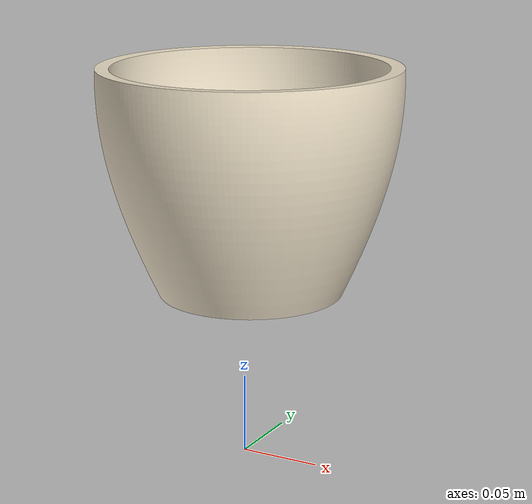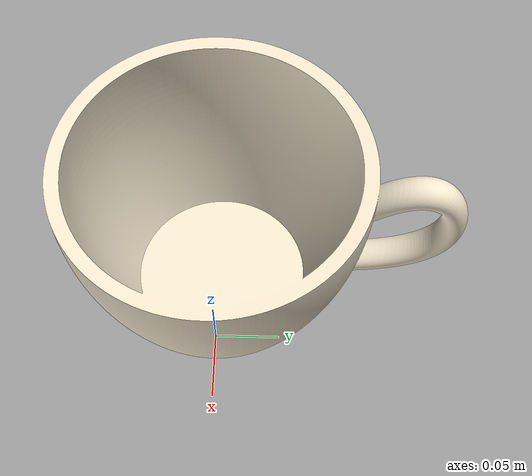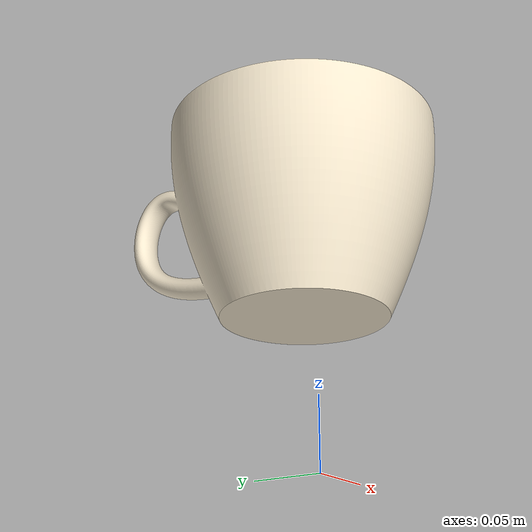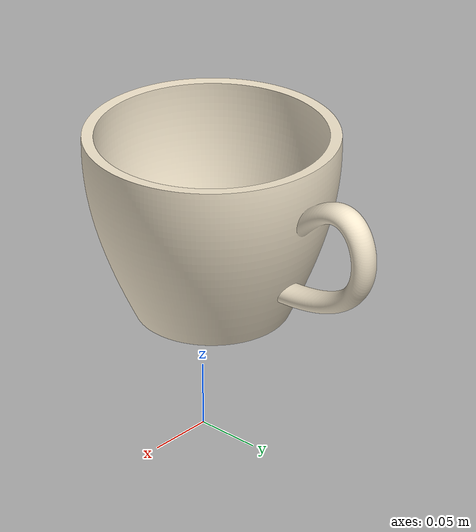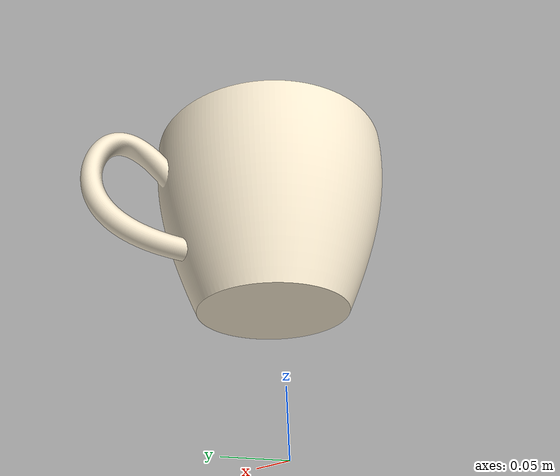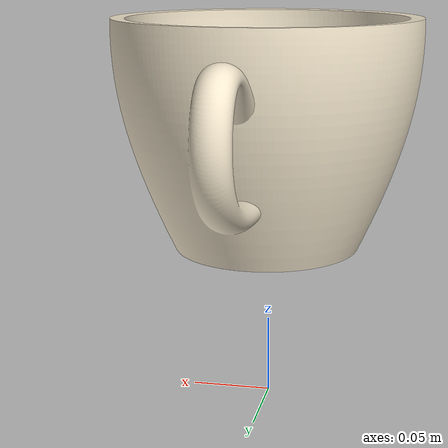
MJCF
<mujoco model="pnp_mug">
    <compiler angle="degree" coordinate="local" />
    <option timestep="0.01" gravity="0 0 -9.81"/>

    <asset>
        <mesh name="mug_vis" file="visual/mug.stl" scale="0.003 0.003 0.003" />
        <mesh name="mug_mesh" file="collision/mug.stl" scale="0.003 0.003 0.003" />
        <material name="mat" rgba="0.95 0.9 0.8 1" specular="0.0" shininess="0.1"/>
    </asset>

    <worldbody>
        <body>
            <body name="object" pos="0 0 0.1">
                <geom solimp="0.998 0.998 0.001"
                    solref="0.001 1"
                    density="100"
                    friction="0.7 0.1 0.1"
                    type="mesh"
                    mesh="mug_vis"
                    conaffinity="0"
                    contype="0"
                    group="1"
                    material="mat" />

                <geom name="mug_geom"
                    type="mesh"
                    mesh="mug_mesh"
                    rgba="0.95 0.9 0.8 1"
                    mass="0.2"
                    group="0" />

            </body>

            <site rgba="0 0 0 0" size="0.005" pos="1.8000000023832283e-09 0.0001579002000000018 -0.03245274" name="bottom_site"/>
            <site rgba="0 0 0 0" size="0.005" pos="1.8000000023832283e-09 0.0001579002000000018 0.033050489999999995" name="top_site"/>
            <site rgba="0 0 0 0" size="0.005" pos="0.05891761439999999 0.057567376799999986 0.0002988749999999995" name="horizontal_radius_site"/>
        </body>
    </worldbody>
</mujoco>
